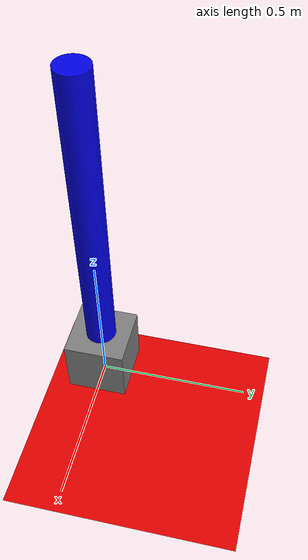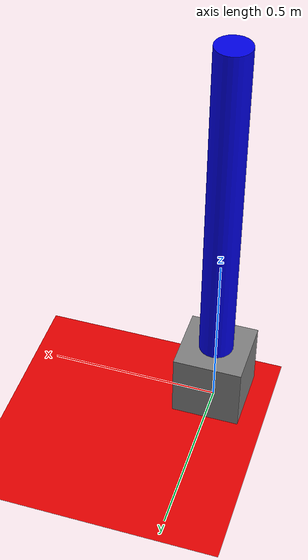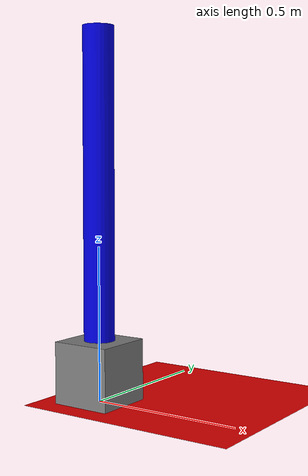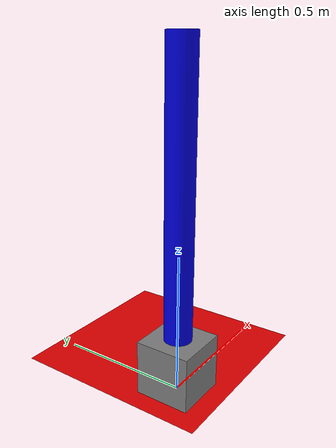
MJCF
<mujoco>
	<worldbody>
        <light diffuse=".5 .5 .5" pos="0 0 3" dir="0 0 -1"/>
		<geom type="plane" size="1 1 0.1" rgba=".9 0 0 1"/>
		<body pos = " 0 0 0.1">
			 <joint name="slide" type = "slide" axis ="1 0 0" />
		   <geom type = "box" size ="0.1 0.1 0.1"/>
		   <body pos="0 0 0.6" euler=" 0 0 0" >
			   <joint name="pin" type="hinge"  axis="0 1 0" pos="0 0 -0.5"/>
			   <geom type="cylinder" size=".05 .5 " rgba="0 0 0.9  1" mass="1"  />
		   </body>
	  </body>
	</worldbody>
	<actuator>
		<motor joint="slide" name="force" ctrllimited="true" ctrlrange="-100 100" gear="1"/>
		<position joint="slide" name ="Position_control1"  kp="10"/>
		<velocity joint="slide" name ="Velocity_control1"  kv="100"/>
	</actuator>
	<actuator>
		<motor joint="pin" name="torque" ctrllimited="true" ctrlrange="-100 100" gear="1"/>
		<position joint="pin" name ="Position_control2"  kp="10"/>
		<velocity joint="pin" name ="Velocity_control3"  kv="100"/>
	</actuator>
	<sensor>
    <jointpos joint ="pin" name="position_Sensor"  noise ="0.2"/>
		<jointvel joint="pin" name="velocity_senosr"  noise ="1"/>
	</sensor>

</mujoco>
